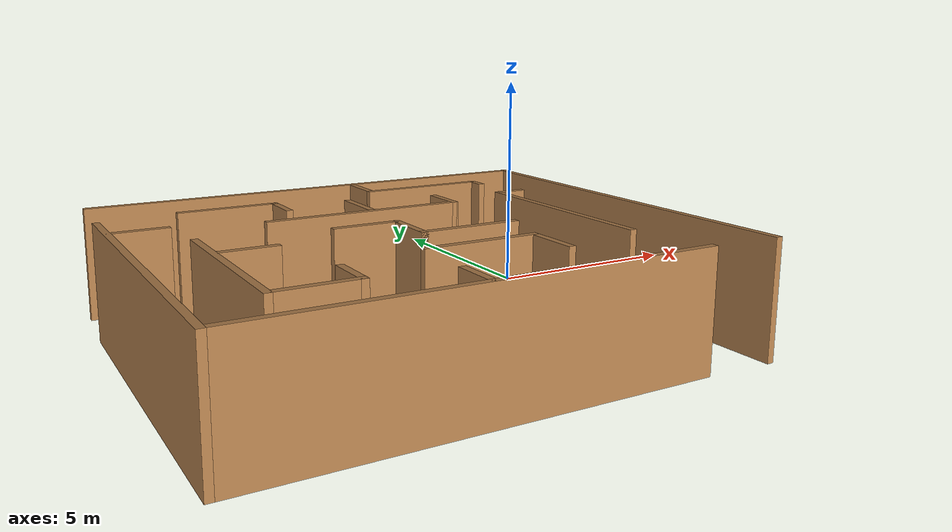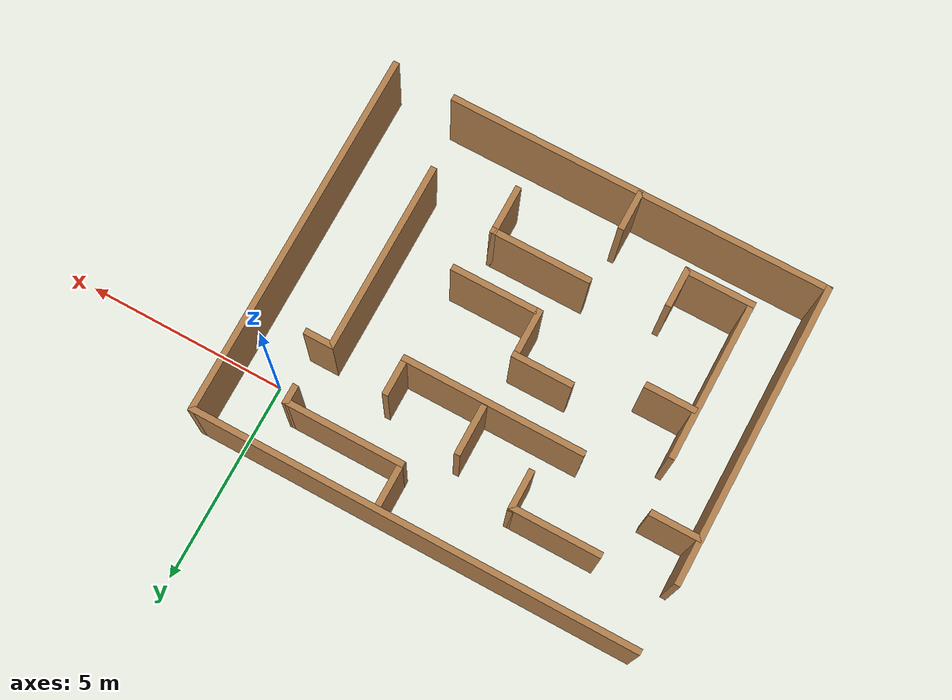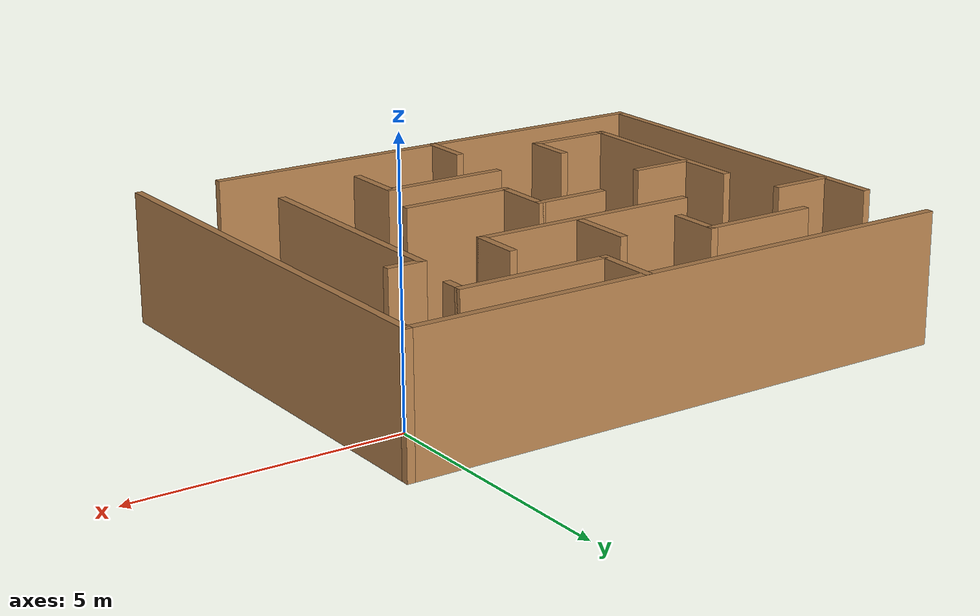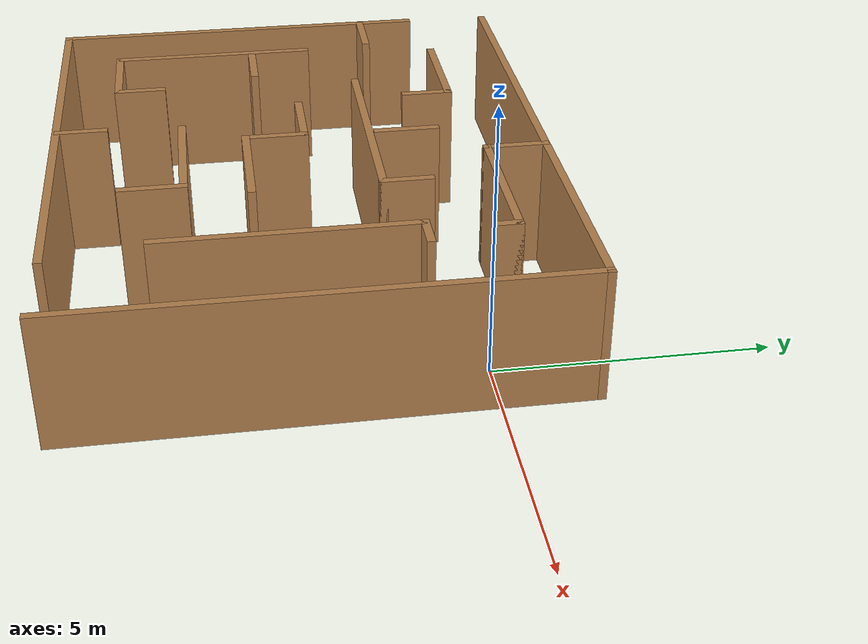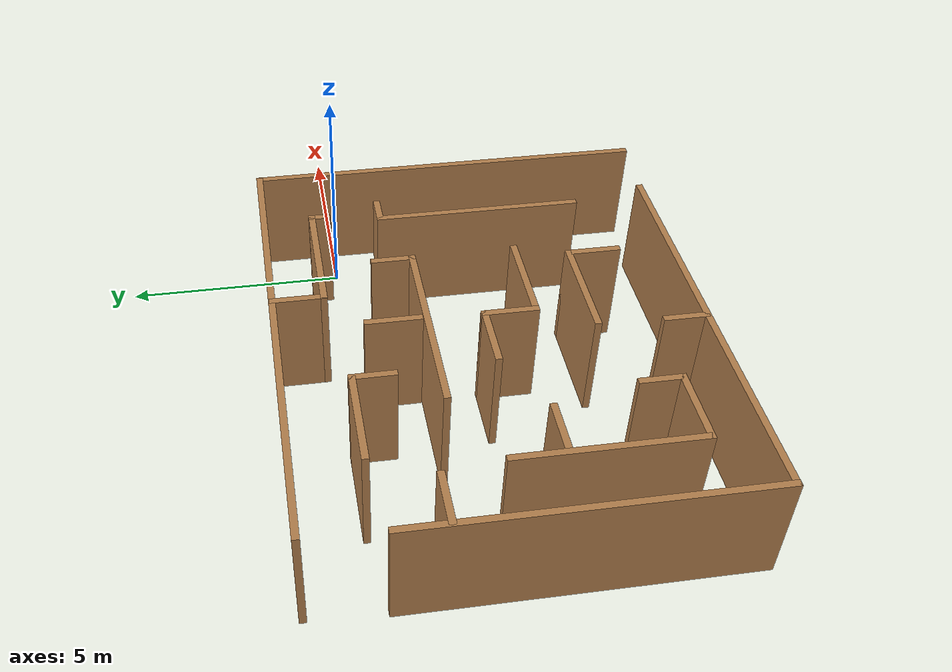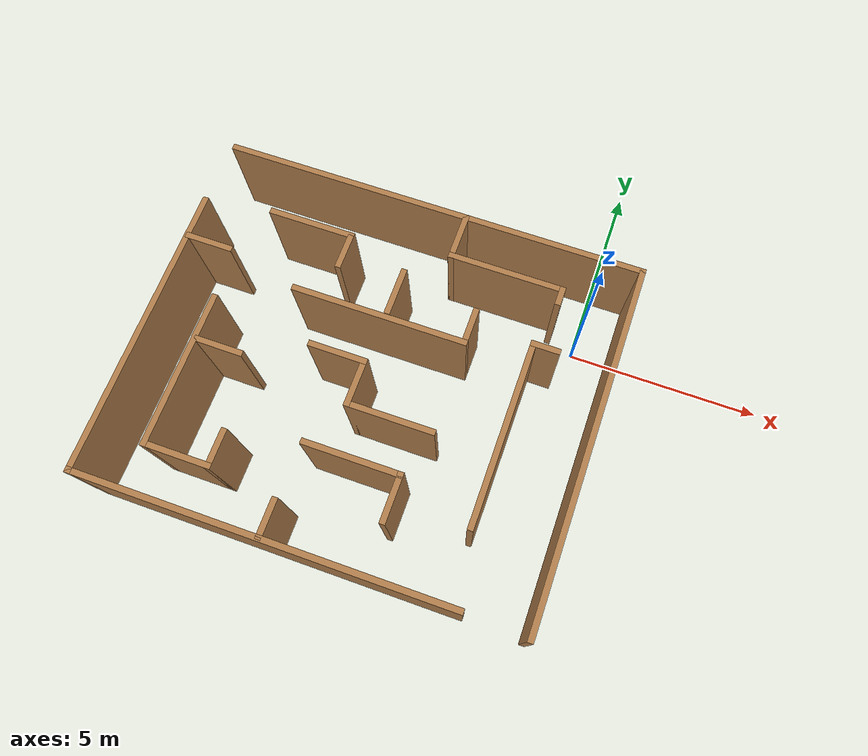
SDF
<?xml version='1.0'?>
<sdf version='1.7'>
  <model name='obstacle_course_4'>
    <pose>-4.48435 -2.851 0 0 -0 0</pose>
    <link name='Wall_0'>
      <collision name='Wall_0_Collision'>
        <geometry>
          <box>
            <size>7.5 0.15 2.5</size>
          </box>
        </geometry>
        <pose>0 0 1.25 0 -0 0</pose>
      </collision>
      <visual name='Wall_0_Visual'>
        <pose>0 0 1.25 0 -0 0</pose>
        <geometry>
          <box>
            <size>7.5 0.15 2.5</size>
          </box>
        </geometry>
        <material>
          <script>
            <uri>file://media/materials/scripts/gazebo.material</uri>
            <name>Gazebo/Wood</name>
          </script>
          <ambient>0.807843 0.360784 0 1</ambient>
        </material>
        <meta>
          <layer>0</layer>
        </meta>
      </visual>
      <pose>-5.47439 -0.809214 0 0 -0 -1.5708</pose>
    </link>
    <link name='Wall_1'>
      <collision name='Wall_1_Collision'>
        <geometry>
          <box>
            <size>9.5 0.15 2.5</size>
          </box>
        </geometry>
        <pose>0 0 1.25 0 -0 0</pose>
      </collision>
      <visual name='Wall_1_Visual'>
        <pose>0 0 1.25 0 -0 0</pose>
        <geometry>
          <box>
            <size>9.5 0.15 2.5</size>
          </box>
        </geometry>
        <material>
          <script>
            <uri>file://media/materials/scripts/gazebo.material</uri>
            <name>Gazebo/Wood</name>
          </script>
          <ambient>0.996078 0.47451 0.0196078 1</ambient>
        </material>
        <meta>
          <layer>0</layer>
        </meta>
      </visual>
      <pose>-0.79939 -4.48421 0 0 -0 0</pose>
    </link>
    <link name='Wall_15'>
      <collision name='Wall_15_Collision'>
        <geometry>
          <box>
            <size>4 0.15 2.5</size>
          </box>
        </geometry>
        <pose>0 0 1.25 0 -0 0</pose>
      </collision>
      <visual name='Wall_15_Visual'>
        <pose>0 0 1.25 0 -0 0</pose>
        <geometry>
          <box>
            <size>4 0.15 2.5</size>
          </box>
        </geometry>
        <material>
          <script>
            <uri>file://media/materials/scripts/gazebo.material</uri>
            <name>Gazebo/Wood</name>
          </script>
          <ambient>0.807843 0.360784 0 1</ambient>
        </material>
        <meta>
          <layer>0</layer>
        </meta>
      </visual>
      <pose>-4.14515 -1.43786 0 0 -0 -1.5708</pose>
    </link>
    <link name='Wall_16'>
      <collision name='Wall_16_Collision'>
        <geometry>
          <box>
            <size>1.75 0.15 2.5</size>
          </box>
        </geometry>
        <pose>0 0 1.25 0 -0 0</pose>
      </collision>
      <visual name='Wall_16_Visual'>
        <pose>0 0 1.25 0 -0 0</pose>
        <geometry>
          <box>
            <size>1.75 0.15 2.5</size>
          </box>
        </geometry>
        <material>
          <script>
            <uri>file://media/materials/scripts/gazebo.material</uri>
            <name>Gazebo/Wood</name>
          </script>
          <ambient>0.996078 0.47451 0.0196078 1</ambient>
        </material>
        <meta>
          <layer>0</layer>
        </meta>
      </visual>
      <pose>-3.34515 -3.36286 0 0 -0 0</pose>
    </link>
    <link name='Wall_17'>
      <collision name='Wall_17_Collision'>
        <geometry>
          <box>
            <size>1 0.15 2.5</size>
          </box>
        </geometry>
        <pose>0 0 1.25 0 -0 0</pose>
      </collision>
      <visual name='Wall_17_Visual'>
        <pose>0 0 1.25 0 -0 0</pose>
        <geometry>
          <box>
            <size>1 0.15 2.5</size>
          </box>
        </geometry>
        <material>
          <script>
            <uri>file://media/materials/scripts/gazebo.material</uri>
            <name>Gazebo/Wood</name>
          </script>
          <ambient>0.996078 0.47451 0.0196078 1</ambient>
        </material>
        <meta>
          <layer>0</layer>
        </meta>
      </visual>
      <pose>-2.54515 -2.93786 0 0 -0 1.5708</pose>
    </link>
    <link name='Wall_19'>
      <collision name='Wall_19_Collision'>
        <geometry>
          <box>
            <size>2.5 0.15 2.5</size>
          </box>
        </geometry>
        <pose>0 0 1.25 0 -0 0</pose>
      </collision>
      <visual name='Wall_19_Visual'>
        <pose>0 0 1.25 0 -0 0</pose>
        <geometry>
          <box>
            <size>2.5 0.15 2.5</size>
          </box>
        </geometry>
        <material>
          <script>
            <uri>file://media/materials/scripts/gazebo.material</uri>
            <name>Gazebo/Wood</name>
          </script>
          <ambient>0.996078 0.47451 0.0196078 1</ambient>
        </material>
        <meta>
          <layer>0</layer>
        </meta>
      </visual>
      <pose>0.457907 -2.13637 0 0 -0 0</pose>
    </link>
    <link name='Wall_20'>
      <collision name='Wall_20_Collision'>
        <geometry>
          <box>
            <size>1.25 0.15 2.5</size>
          </box>
        </geometry>
        <pose>0 0 1.25 0 -0 0</pose>
      </collision>
      <visual name='Wall_20_Visual'>
        <pose>0 0 1.25 0 -0 0</pose>
        <geometry>
          <box>
            <size>1.25 0.15 2.5</size>
          </box>
        </geometry>
        <material>
          <script>
            <uri>file://media/materials/scripts/gazebo.material</uri>
            <name>Gazebo/Wood</name>
          </script>
          <ambient>0.996078 0.47451 0.0196078 1</ambient>
        </material>
        <meta>
          <layer>0</layer>
        </meta>
      </visual>
      <pose>1.63291 -2.68637 0 0 -0 -1.5708</pose>
    </link>
    <link name='Wall_22'>
      <collision name='Wall_22_Collision'>
        <geometry>
          <box>
            <size>4.5 0.15 2.5</size>
          </box>
        </geometry>
        <pose>0 0 1.25 0 -0 0</pose>
      </collision>
      <visual name='Wall_22_Visual'>
        <pose>0 0 1.25 0 -0 0</pose>
        <geometry>
          <box>
            <size>4.5 0.15 2.5</size>
          </box>
        </geometry>
        <material>
          <script>
            <uri>file://media/materials/scripts/gazebo.material</uri>
            <name>Gazebo/Wood</name>
          </script>
          <ambient>0.996078 0.47451 0.0196078 1</ambient>
        </material>
        <meta>
          <layer>0</layer>
        </meta>
      </visual>
      <pose>-0.221138 1.36164 0 0 -0 0</pose>
    </link>
    <link name='Wall_23'>
      <collision name='Wall_23_Collision'>
        <geometry>
          <box>
            <size>1 0.15 2.5</size>
          </box>
        </geometry>
        <pose>0 0 1.25 0 -0 0</pose>
      </collision>
      <visual name='Wall_23_Visual'>
        <pose>0 0 1.25 0 -0 0</pose>
        <geometry>
          <box>
            <size>1 0.15 2.5</size>
          </box>
        </geometry>
        <material>
          <script>
            <uri>file://media/materials/scripts/gazebo.material</uri>
            <name>Gazebo/Wood</name>
          </script>
          <ambient>0.996078 0.47451 0.0196078 1</ambient>
        </material>
        <meta>
          <layer>0</layer>
        </meta>
      </visual>
      <pose>1.95386 1.78664 0 0 -0 1.5708</pose>
    </link>
    <link name='Wall_25'>
      <collision name='Wall_25_Collision'>
        <geometry>
          <box>
            <size>1.25 0.15 2.5</size>
          </box>
        </geometry>
        <pose>0 0 1.25 0 -0 0</pose>
      </collision>
      <visual name='Wall_25_Visual'>
        <pose>0 0 1.25 0 -0 0</pose>
        <geometry>
          <box>
            <size>1.25 0.15 2.5</size>
          </box>
        </geometry>
        <material>
          <script>
            <uri>file://media/materials/scripts/gazebo.material</uri>
            <name>Gazebo/Wood</name>
          </script>
          <ambient>0.807843 0.360784 0 1</ambient>
        </material>
        <meta>
          <layer>0</layer>
        </meta>
      </visual>
      <pose>-4.88941 1.81638 0 0 -0 0</pose>
    </link>
    <link name='Wall_3'>
      <collision name='Wall_3_Collision'>
        <geometry>
          <box>
            <size>9.25 0.15 2.5</size>
          </box>
        </geometry>
        <pose>0 0 1.25 0 -0 0</pose>
      </collision>
      <visual name='Wall_3_Visual'>
        <pose>0 0 1.25 0 -0 0</pose>
        <geometry>
          <box>
            <size>9.25 0.15 2.5</size>
          </box>
        </geometry>
        <material>
          <script>
            <uri>file://media/materials/scripts/gazebo.material</uri>
            <name>Gazebo/Wood</name>
          </script>
          <ambient>0.807843 0.360784 0 1</ambient>
        </material>
        <meta>
          <layer>0</layer>
        </meta>
      </visual>
      <pose>5.47439 0 0 0 -0 1.5708</pose>
    </link>
    <link name='Wall_35'>
      <collision name='Wall_35_Collision'>
        <geometry>
          <box>
            <size>1 0.15 2.5</size>
          </box>
        </geometry>
        <pose>0 0 1.25 0 -0 0</pose>
      </collision>
      <visual name='Wall_35_Visual'>
        <pose>0 0 1.25 0 -0 0</pose>
        <geometry>
          <box>
            <size>1 0.15 2.5</size>
          </box>
        </geometry>
        <material>
          <script>
            <uri>file://media/materials/scripts/gazebo.material</uri>
            <name>Gazebo/Wood</name>
          </script>
          <ambient>0.996078 0.47451 0.0196078 1</ambient>
        </material>
        <meta>
          <layer>0</layer>
        </meta>
      </visual>
      <pose>-0.822033 -4.02006 0 0 -0 1.5708</pose>
    </link>
    <link name='Wall_4'>
      <collision name='Wall_4_Collision'>
        <geometry>
          <box>
            <size>11 0.15 2.5</size>
          </box>
        </geometry>
        <pose>0 0 1.25 0 -0 0</pose>
      </collision>
      <visual name='Wall_4_Visual'>
        <pose>0 0 1.25 0 -0 0</pose>
        <geometry>
          <box>
            <size>11 0.15 2.5</size>
          </box>
        </geometry>
        <material>
          <script>
            <uri>file://media/materials/scripts/gazebo.material</uri>
            <name>Gazebo/Wood</name>
          </script>
          <ambient>0.807843 0.360784 0 1</ambient>
        </material>
        <meta>
          <layer>0</layer>
        </meta>
      </visual>
      <pose>0.049389 4.55 0 0 -0 3.14159</pose>
    </link>
    <link name='Wall_44'>
      <collision name='Wall_44_Collision'>
        <geometry>
          <box>
            <size>2.25 0.15 2.5</size>
          </box>
        </geometry>
        <pose>0 0 1.25 0 -0 0</pose>
      </collision>
      <visual name='Wall_44_Visual'>
        <pose>0 0 1.25 0 -0 0</pose>
        <geometry>
          <box>
            <size>2.25 0.15 2.5</size>
          </box>
        </geometry>
        <material>
          <script>
            <uri>file://media/materials/scripts/gazebo.material</uri>
            <name>Gazebo/Wood</name>
          </script>
          <ambient>0.996078 0.47451 0.0196078 1</ambient>
        </material>
        <meta>
          <layer>0</layer>
        </meta>
      </visual>
      <pose>-2.67538 3.13515 0 0 -0 0</pose>
    </link>
    <link name='Wall_45'>
      <collision name='Wall_45_Collision'>
        <geometry>
          <box>
            <size>1 0.15 2.5</size>
          </box>
        </geometry>
        <pose>0 0 1.25 0 -0 0</pose>
      </collision>
      <visual name='Wall_45_Visual'>
        <pose>0 0 1.25 0 -0 0</pose>
        <geometry>
          <box>
            <size>1 0.15 2.5</size>
          </box>
        </geometry>
        <material>
          <script>
            <uri>file://media/materials/scripts/gazebo.material</uri>
            <name>Gazebo/Wood</name>
          </script>
          <ambient>0.996078 0.47451 0.0196078 1</ambient>
        </material>
        <meta>
          <layer>0</layer>
        </meta>
      </visual>
      <pose>-1.62538 2.71015 0 0 -0 -1.5708</pose>
    </link>
    <link name='Wall_53'>
      <collision name='Wall_53_Collision'>
        <geometry>
          <box>
            <size>1.25 0.15 2.5</size>
          </box>
        </geometry>
        <pose>0 0 1.25 0 -0 0</pose>
      </collision>
      <visual name='Wall_53_Visual'>
        <pose>0 0 1.25 0 -0 0</pose>
        <geometry>
          <box>
            <size>1.25 0.15 2.5</size>
          </box>
        </geometry>
        <material>
          <script>
            <uri>file://media/materials/scripts/gazebo.material</uri>
            <name>Gazebo/Wood</name>
          </script>
          <ambient>0.996078 0.47451 0.0196078 1</ambient>
        </material>
        <meta>
          <layer>0</layer>
        </meta>
      </visual>
      <pose>-3.52519 -0.632226 0 0 -0 0</pose>
    </link>
    <link name='Wall_59'>
      <collision name='Wall_59_Collision'>
        <geometry>
          <box>
            <size>1.25 0.15 2.5</size>
          </box>
        </geometry>
        <pose>0 0 1.25 0 -0 0</pose>
      </collision>
      <visual name='Wall_59_Visual'>
        <pose>0 0 1.25 0 -0 0</pose>
        <geometry>
          <box>
            <size>1.25 0.15 2.5</size>
          </box>
        </geometry>
        <material>
          <script>
            <uri>file://media/materials/scripts/gazebo.material</uri>
            <name>Gazebo/Wood</name>
          </script>
          <ambient>0.807843 0.360784 0 1</ambient>
        </material>
        <meta>
          <layer>0</layer>
        </meta>
      </visual>
      <pose>0.907563 3.98814 0 0 -0 -1.5708</pose>
    </link>
    <link name='Wall_6'>
      <collision name='Wall_6_Collision'>
        <geometry>
          <box>
            <size>4.75 0.15 2.5</size>
          </box>
        </geometry>
        <pose>0 0 1.25 0 -0 0</pose>
      </collision>
      <visual name='Wall_6_Visual'>
        <pose>0 0 1.25 0 -0 0</pose>
        <geometry>
          <box>
            <size>4.75 0.15 2.5</size>
          </box>
        </geometry>
        <material>
          <script>
            <uri>file://media/materials/scripts/gazebo.material</uri>
            <name>Gazebo/Wood</name>
          </script>
          <ambient>0.996078 0.47451 0.0196078 1</ambient>
        </material>
        <meta>
          <layer>0</layer>
        </meta>
      </visual>
      <pose>3.5155 -0.431034 0 0 -0 1.5708</pose>
    </link>
    <link name='Wall_60'>
      <collision name='Wall_60_Collision'>
        <geometry>
          <box>
            <size>3 0.15 2.5</size>
          </box>
        </geometry>
        <pose>0 0 1.25 0 -0 0</pose>
      </collision>
      <visual name='Wall_60_Visual'>
        <pose>0 0 1.25 0 -0 0</pose>
        <geometry>
          <box>
            <size>3 0.15 2.5</size>
          </box>
        </geometry>
        <material>
          <script>
            <uri>file://media/materials/scripts/gazebo.material</uri>
            <name>Gazebo/Wood</name>
          </script>
          <ambient>0.996078 0.47451 0.0196078 1</ambient>
        </material>
        <meta>
          <layer>0</layer>
        </meta>
      </visual>
      <pose>2.33256 3.43814 0 0 -0 0</pose>
    </link>
    <link name='Wall_61'>
      <collision name='Wall_61_Collision'>
        <geometry>
          <box>
            <size>0.5 0.15 2.5</size>
          </box>
        </geometry>
        <pose>0 0 1.25 0 -0 0</pose>
      </collision>
      <visual name='Wall_61_Visual'>
        <pose>0 0 1.25 0 -0 0</pose>
        <geometry>
          <box>
            <size>0.5 0.15 2.5</size>
          </box>
        </geometry>
        <material>
          <script>
            <uri>file://media/materials/scripts/gazebo.material</uri>
            <name>Gazebo/Wood</name>
          </script>
          <ambient>0.996078 0.47451 0.0196078 1</ambient>
        </material>
        <meta>
          <layer>0</layer>
        </meta>
      </visual>
      <pose>3.75756 3.26314 0 0 -0 -1.5708</pose>
    </link>
    <link name='Wall_67'>
      <collision name='Wall_67_Collision'>
        <geometry>
          <box>
            <size>1.25 0.15 2.5</size>
          </box>
        </geometry>
        <pose>0 0 1.25 0 -0 0</pose>
      </collision>
      <visual name='Wall_67_Visual'>
        <pose>0 0 1.25 0 -0 0</pose>
        <geometry>
          <box>
            <size>1.25 0.15 2.5</size>
          </box>
        </geometry>
        <material>
          <script>
            <uri>file://media/materials/scripts/gazebo.material</uri>
            <name>Gazebo/Wood</name>
          </script>
          <ambient>0.996078 0.47451 0.0196078 1</ambient>
        </material>
        <meta>
          <layer>0</layer>
        </meta>
      </visual>
      <pose>-0.050044 2.07345 0 0 -0 1.5708</pose>
    </link>
    <link name='Wall_7'>
      <collision name='Wall_7_Collision'>
        <geometry>
          <box>
            <size>0.75 0.15 2.5</size>
          </box>
        </geometry>
        <pose>0 0 1.25 0 -0 0</pose>
      </collision>
      <visual name='Wall_7_Visual'>
        <pose>0 0 1.25 0 -0 0</pose>
        <geometry>
          <box>
            <size>0.75 0.15 2.5</size>
          </box>
        </geometry>
        <material>
          <script>
            <uri>file://media/materials/scripts/gazebo.material</uri>
            <name>Gazebo/Wood</name>
          </script>
          <ambient>0.996078 0.47451 0.0196078 1</ambient>
        </material>
        <meta>
          <layer>0</layer>
        </meta>
      </visual>
      <pose>3.8155 1.86897 0 0 -0 0</pose>
    </link>
    <link name='Wall_70'>
      <collision name='Wall_70_Collision'>
        <geometry>
          <box>
            <size>1.5 0.15 2.5</size>
          </box>
        </geometry>
        <pose>0 0 1.25 0 -0 0</pose>
      </collision>
      <visual name='Wall_70_Visual'>
        <pose>0 0 1.25 0 -0 0</pose>
        <geometry>
          <box>
            <size>1.5 0.15 2.5</size>
          </box>
        </geometry>
        <material>
          <script>
            <uri>file://media/materials/scripts/gazebo.material</uri>
            <name>Gazebo/Wood</name>
          </script>
          <ambient>0.996078 0.47451 0.0196078 1</ambient>
        </material>
        <meta>
          <layer>0</layer>
        </meta>
      </visual>
      <pose>-0.793722 0.140242 0 0 -0 0</pose>
    </link>
    <link name='Wall_71'>
      <collision name='Wall_71_Collision'>
        <geometry>
          <box>
            <size>1.25 0.15 2.5</size>
          </box>
        </geometry>
        <pose>0 0 1.25 0 -0 0</pose>
      </collision>
      <visual name='Wall_71_Visual'>
        <pose>0 0 1.25 0 -0 0</pose>
        <geometry>
          <box>
            <size>1.25 0.15 2.5</size>
          </box>
        </geometry>
        <material>
          <script>
            <uri>file://media/materials/scripts/gazebo.material</uri>
            <name>Gazebo/Wood</name>
          </script>
          <ambient>0.996078 0.47451 0.0196078 1</ambient>
        </material>
        <meta>
          <layer>0</layer>
        </meta>
      </visual>
      <pose>-0.118722 -0.409758 0 0 -0 -1.5708</pose>
    </link>
    <link name='Wall_72'>
      <collision name='Wall_72_Collision'>
        <geometry>
          <box>
            <size>2.25 0.15 2.5</size>
          </box>
        </geometry>
        <pose>0 0 1.25 0 -0 0</pose>
      </collision>
      <visual name='Wall_72_Visual'>
        <pose>0 0 1.25 0 -0 0</pose>
        <geometry>
          <box>
            <size>2.25 0.15 2.5</size>
          </box>
        </geometry>
        <material>
          <script>
            <uri>file://media/materials/scripts/gazebo.material</uri>
            <name>Gazebo/Wood</name>
          </script>
          <ambient>0.996078 0.47451 0.0196078 1</ambient>
        </material>
        <meta>
          <layer>0</layer>
        </meta>
      </visual>
      <pose>0.931278 -0.959758 0 0 -0 0</pose>
    </link>
    <static>1</static>
  </model>
</sdf>
